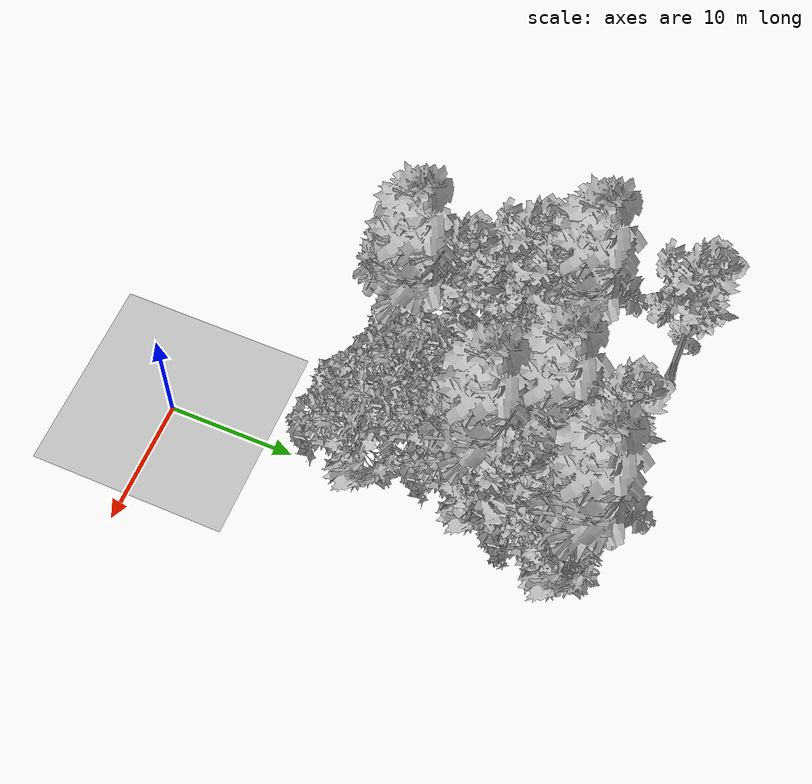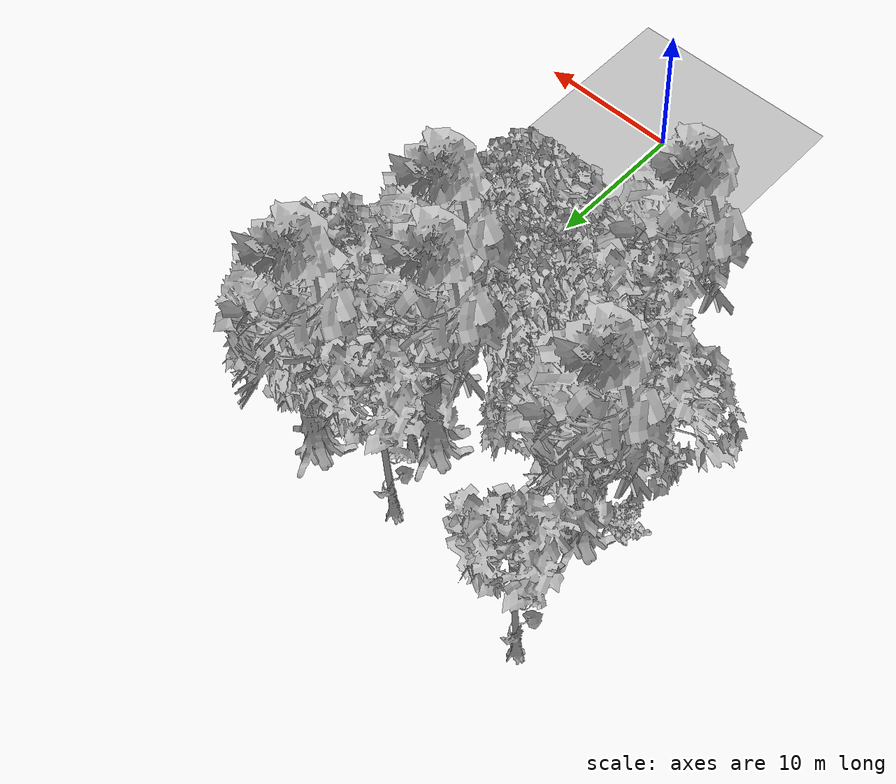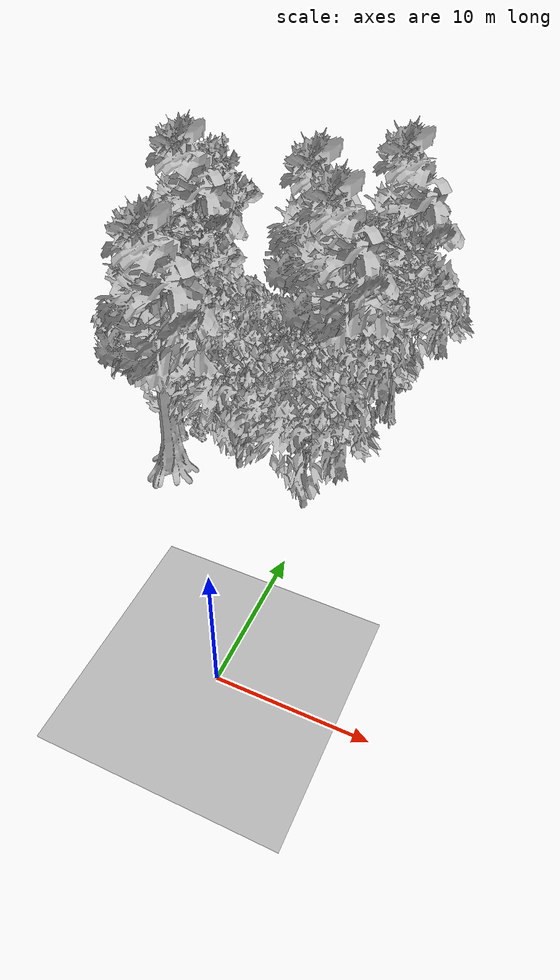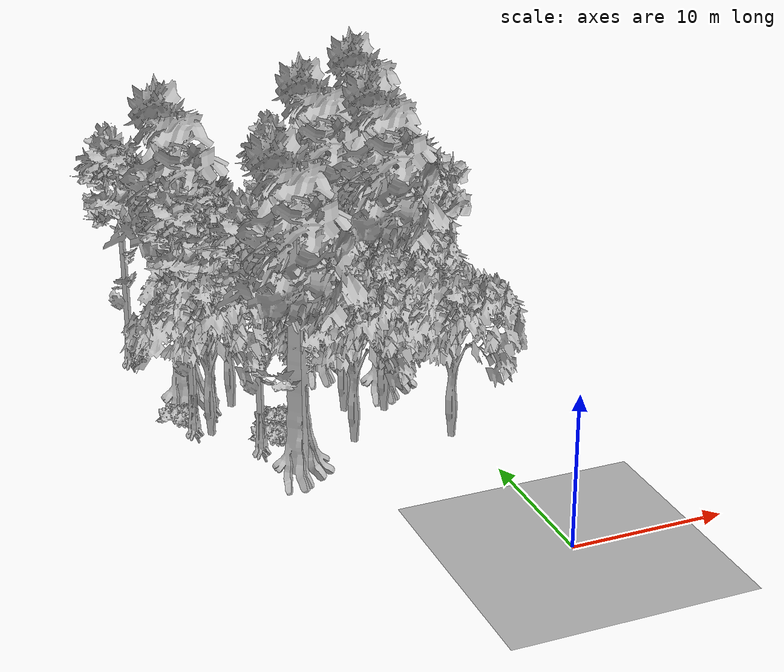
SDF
<sdf version="1.7">
 <world name="default">
  <model name="ground_plane">
   <static>1</static>
   <link name="link">
    <collision name="collision">
     <geometry><plane><normal>0 0 1</normal><size>70 70</size></plane></geometry>
     <surface><contact><ode><min_depth>0.01</min_depth><max_vel>0</max_vel></ode></contact></surface>
    </collision>
    <visual name="grass">
     <cast_shadows>0</cast_shadows>
     <geometry>
      <mesh>
       <scale>0.29000000000000004 0.29000000000000004 0.1</scale>
       <uri>file://grass_plane/meshes/grass_plane.dae</uri>
      </mesh>
     </geometry>
    </visual>
   </link>
  </model>
  <model name="Tree 14">
   <static>1</static>
   <pose>-13.155826143513934 24.653852895223466 0 1.57079 -0 0</pose>
   <link name="link">
    <collision name="collision">
     <geometry><mesh><scale>5 5 5</scale><uri>model://tree_2/meshes/tree_2.obj</uri></mesh></geometry>
    </collision>
    <visual name="visual">
     <geometry><mesh><scale>5 5 5</scale><uri>model://tree_2/meshes/tree_2.obj</uri></mesh></geometry>
    </visual>
   </link>
  </model>
  <model name="Tree 34">
   <static>1</static>
   <pose>-4.290837231000886 28.81031693860856 0 1.57079 -0 0</pose>
   <link name="link">
    <collision name="collision">
     <geometry><mesh><scale>5 5 5</scale><uri>model://tree_9/meshes/tree_9.obj</uri></mesh></geometry>
    </collision>
    <visual name="visual">
     <geometry><mesh><scale>5 5 5</scale><uri>model://tree_9/meshes/tree_9.obj</uri></mesh></geometry>
    </visual>
   </link>
  </model>
  <model name="Tree 36">
   <static>1</static>
   <pose>-5.359628527210322 27.735196052209865 0 1.57079 -0 0</pose>
   <link name="link">
    <collision name="collision">
     <geometry><mesh><scale>5 5 5</scale><uri>model://tree_4/meshes/tree_4.obj</uri></mesh></geometry>
    </collision>
    <visual name="visual">
     <geometry><mesh><scale>5 5 5</scale><uri>model://tree_4/meshes/tree_4.obj</uri></mesh></geometry>
    </visual>
   </link>
  </model>
  <model name="Tree 39">
   <static>1</static>
   <pose>1.1424891446057899 30.519698558665752 0 1.57079 -0 0</pose>
   <link name="link">
    <collision name="collision">
     <geometry><mesh><scale>5 5 5</scale><uri>model://tree_2/meshes/tree_2.obj</uri></mesh></geometry>
    </collision>
    <visual name="visual">
     <geometry><mesh><scale>5 5 5</scale><uri>model://tree_2/meshes/tree_2.obj</uri></mesh></geometry>
    </visual>
   </link>
  </model>
  <model name="Tree 53">
   <static>1</static>
   <pose>-2.1784099853083987 23.676326276139648 0 1.57079 -0 0</pose>
   <link name="link">
    <collision name="collision">
     <geometry><mesh><scale>5 5 5</scale><uri>model://tree_4/meshes/tree_4.obj</uri></mesh></geometry>
    </collision>
    <visual name="visual">
     <geometry><mesh><scale>5 5 5</scale><uri>model://tree_4/meshes/tree_4.obj</uri></mesh></geometry>
    </visual>
   </link>
  </model>
  <model name="Tree 60">
   <static>1</static>
   <pose>-16.322815380174813 22.375721664664916 0 1.57079 -0 0</pose>
   <link name="link">
    <collision name="collision">
     <geometry><mesh><scale>5 5 5</scale><uri>model://tree_9/meshes/tree_9.obj</uri></mesh></geometry>
    </collision>
    <visual name="visual">
     <geometry><mesh><scale>5 5 5</scale><uri>model://tree_9/meshes/tree_9.obj</uri></mesh></geometry>
    </visual>
   </link>
  </model>
  <model name="Tree 90">
   <static>1</static>
   <pose>-15.665423330174036 26.449363454888598 0 1.57079 -0 0</pose>
   <link name="link">
    <collision name="collision">
     <geometry><mesh><scale>5 5 5</scale><uri>model://tree_4/meshes/tree_4.obj</uri></mesh></geometry>
    </collision>
    <visual name="visual">
     <geometry><mesh><scale>5 5 5</scale><uri>model://tree_4/meshes/tree_4.obj</uri></mesh></geometry>
    </visual>
   </link>
  </model>
  <model name="Tree 104">
   <static>1</static>
   <pose>-3.7664675425530056 20.254201115387083 0 1.57079 -0 0</pose>
   <link name="link">
    <collision name="collision">
     <geometry><mesh><scale>5 5 5</scale><uri>model://tree_2/meshes/tree_2.obj</uri></mesh></geometry>
    </collision>
    <visual name="visual">
     <geometry><mesh><scale>5 5 5</scale><uri>model://tree_2/meshes/tree_2.obj</uri></mesh></geometry>
    </visual>
   </link>
  </model>
  <model name="Tree 109">
   <static>1</static>
   <pose>-14.388559423110713 24.683558042298586 0 1.57079 -0 0</pose>
   <link name="link">
    <collision name="collision">
     <geometry><mesh><scale>5 5 5</scale><uri>model://tree_9/meshes/tree_9.obj</uri></mesh></geometry>
    </collision>
    <visual name="visual">
     <geometry><mesh><scale>5 5 5</scale><uri>model://tree_9/meshes/tree_9.obj</uri></mesh></geometry>
    </visual>
   </link>
  </model>
  <model name="Tree 122">
   <static>1</static>
   <pose>-11.701279881632601 14.702543456800655 0 1.57079 -0 0</pose>
   <link name="link">
    <collision name="collision">
     <geometry><mesh><scale>5 5 5</scale><uri>model://tree_4/meshes/tree_4.obj</uri></mesh></geometry>
    </collision>
    <visual name="visual">
     <geometry><mesh><scale>5 5 5</scale><uri>model://tree_4/meshes/tree_4.obj</uri></mesh></geometry>
    </visual>
   </link>
  </model>
  <model name="Tree 134">
   <static>1</static>
   <pose>-7.209886586354113 16.928856347473044 0 1.57079 -0 0</pose>
   <link name="link">
    <collision name="collision">
     <geometry><mesh><scale>5 5 5</scale><uri>model://tree_2/meshes/tree_2.obj</uri></mesh></geometry>
    </collision>
    <visual name="visual">
     <geometry><mesh><scale>5 5 5</scale><uri>model://tree_2/meshes/tree_2.obj</uri></mesh></geometry>
    </visual>
   </link>
  </model>
  <model name="Tree 145">
   <static>1</static>
   <pose>-17.558642802297946 34.16631468619332 0 1.57079 -0 0</pose>
   <link name="link">
    <collision name="collision">
     <geometry><mesh><scale>5 5 5</scale><uri>model://tree_9/meshes/tree_9.obj</uri></mesh></geometry>
    </collision>
    <visual name="visual">
     <geometry><mesh><scale>5 5 5</scale><uri>model://tree_9/meshes/tree_9.obj</uri></mesh></geometry>
    </visual>
   </link>
  </model>
  <model name="Tree 165">
   <static>1</static>
   <pose>-6.408734661924715 32.491914181601175 0 1.57079 -0 0</pose>
   <link name="link">
    <collision name="collision">
     <geometry><mesh><scale>5 5 5</scale><uri>model://tree_9/meshes/tree_9.obj</uri></mesh></geometry>
    </collision>
    <visual name="visual">
     <geometry><mesh><scale>5 5 5</scale><uri>model://tree_9/meshes/tree_9.obj</uri></mesh></geometry>
    </visual>
   </link>
  </model>
  <model name="Tree 173">
   <static>1</static>
   <pose>-6.298475657159017 21.172324540353593 0 1.57079 -0 0</pose>
   <link name="link">
    <collision name="collision">
     <geometry><mesh><scale>5 5 5</scale><uri>model://tree_2/meshes/tree_2.obj</uri></mesh></geometry>
    </collision>
    <visual name="visual">
     <geometry><mesh><scale>5 5 5</scale><uri>model://tree_2/meshes/tree_2.obj</uri></mesh></geometry>
    </visual>
   </link>
  </model>
  <model name="Tree 185">
   <static>1</static>
   <pose>-1.1833278585842137 23.672991427570253 0 1.57079 -0 0</pose>
   <link name="link">
    <collision name="collision">
     <geometry><mesh><scale>5 5 5</scale><uri>model://tree_2/meshes/tree_2.obj</uri></mesh></geometry>
    </collision>
    <visual name="visual">
     <geometry><mesh><scale>5 5 5</scale><uri>model://tree_2/meshes/tree_2.obj</uri></mesh></geometry>
    </visual>
   </link>
  </model>
  <model name="Tree 193">
   <static>1</static>
   <pose>-13.035462558393068 18.281573497082654 0 1.57079 -0 0</pose>
   <link name="link">
    <collision name="collision">
     <geometry><mesh><scale>5 5 5</scale><uri>model://tree_9/meshes/tree_9.obj</uri></mesh></geometry>
    </collision>
    <visual name="visual">
     <geometry><mesh><scale>5 5 5</scale><uri>model://tree_9/meshes/tree_9.obj</uri></mesh></geometry>
    </visual>
   </link>
  </model>
  <model name="Tree 195">
   <static>1</static>
   <pose>-15.580343633168038 21.287710682540123 0 1.57079 -0 0</pose>
   <link name="link">
    <collision name="collision">
     <geometry><mesh><scale>5 5 5</scale><uri>model://tree_2/meshes/tree_2.obj</uri></mesh></geometry>
    </collision>
    <visual name="visual">
     <geometry><mesh><scale>5 5 5</scale><uri>model://tree_2/meshes/tree_2.obj</uri></mesh></geometry>
    </visual>
   </link>
  </model>
  <model name="Tree 202">
   <static>1</static>
   <pose>-1.0588573783767359 15.217149599242681 0 1.57079 -0 0</pose>
   <link name="link">
    <collision name="collision">
     <geometry><mesh><scale>5 5 5</scale><uri>model://tree_2/meshes/tree_2.obj</uri></mesh></geometry>
    </collision>
    <visual name="visual">
     <geometry><mesh><scale>5 5 5</scale><uri>model://tree_2/meshes/tree_2.obj</uri></mesh></geometry>
    </visual>
   </link>
  </model>
  <model name="Tree 217">
   <static>1</static>
   <pose>0.010689677506704243 32.26704149018076 0 1.57079 -0 0</pose>
   <link name="link">
    <collision name="collision">
     <geometry><mesh><scale>5 5 5</scale><uri>model://tree_4/meshes/tree_4.obj</uri></mesh></geometry>
    </collision>
    <visual name="visual">
     <geometry><mesh><scale>5 5 5</scale><uri>model://tree_4/meshes/tree_4.obj</uri></mesh></geometry>
    </visual>
   </link>
  </model>
  <model name="Tree 228">
   <static>1</static>
   <pose>1.622566692138868 27.162915123578685 0 1.57079 -0 0</pose>
   <link name="link">
    <collision name="collision">
     <geometry><mesh><scale>5 5 5</scale><uri>model://tree_9/meshes/tree_9.obj</uri></mesh></geometry>
    </collision>
    <visual name="visual">
     <geometry><mesh><scale>5 5 5</scale><uri>model://tree_9/meshes/tree_9.obj</uri></mesh></geometry>
    </visual>
   </link>
  </model>
  <model name="Tree 233">
   <static>1</static>
   <pose>0.7520432487174986 27.483161401980148 0 1.57079 -0 0</pose>
   <link name="link">
    <collision name="collision">
     <geometry><mesh><scale>5 5 5</scale><uri>model://tree_9/meshes/tree_9.obj</uri></mesh></geometry>
    </collision>
    <visual name="visual">
     <geometry><mesh><scale>5 5 5</scale><uri>model://tree_9/meshes/tree_9.obj</uri></mesh></geometry>
    </visual>
   </link>
  </model>
  <model name="Bush 9">
   <static>1</static>
   <pose>-12.013108485198497 19.367034804148 0 1.57079 -0 0</pose>
   <link name="link">
    <collision name="collision">
     <geometry><mesh><scale>2 2 2</scale><uri>model://bush_2/meshes/bush_2.obj</uri></mesh></geometry>
    </collision>
    <visual name="visual">
     <geometry><mesh><scale>5 5 5</scale><uri>model://bush_2/meshes/bush_2.obj</uri></mesh></geometry>
    </visual>
   </link>
  </model>
  <model name="Bush 15">
   <static>1</static>
   <pose>-11.142490281689483 21.29650130448639 0 1.57079 -0 0</pose>
   <link name="link">
    <collision name="collision">
     <geometry><mesh><scale>2 2 2</scale><uri>model://bush_2/meshes/bush_2.obj</uri></mesh></geometry>
    </collision>
    <visual name="visual">
     <geometry><mesh><scale>5 5 5</scale><uri>model://bush_2/meshes/bush_2.obj</uri></mesh></geometry>
    </visual>
   </link>
  </model>
  <model name="Bush 31">
   <static>1</static>
   <pose>-16.94782866470608 24.065152159486786 0 1.57079 -0 0</pose>
   <link name="link">
    <collision name="collision">
     <geometry><mesh><scale>2 2 2</scale><uri>model://bush_2/meshes/bush_2.obj</uri></mesh></geometry>
    </collision>
    <visual name="visual">
     <geometry><mesh><scale>5 5 5</scale><uri>model://bush_2/meshes/bush_2.obj</uri></mesh></geometry>
    </visual>
   </link>
  </model>
  <model name="Bush 54">
   <static>1</static>
   <pose>0.6680040126396136 29.956278873872193 0 1.57079 -0 0</pose>
   <link name="link">
    <collision name="collision">
     <geometry><mesh><scale>2 2 2</scale><uri>model://bush_1/meshes/bush_1.obj</uri></mesh></geometry>
    </collision>
    <visual name="visual">
     <geometry><mesh><scale>5 5 5</scale><uri>model://bush_1/meshes/bush_1.obj</uri></mesh></geometry>
    </visual>
   </link>
  </model>
 </world>
</sdf>
